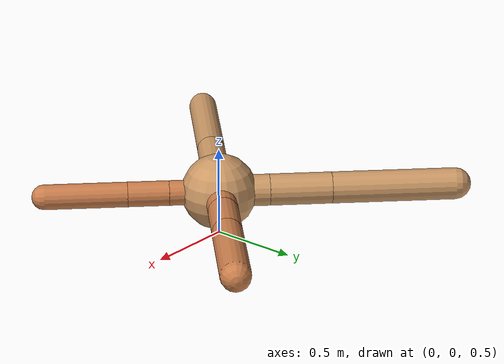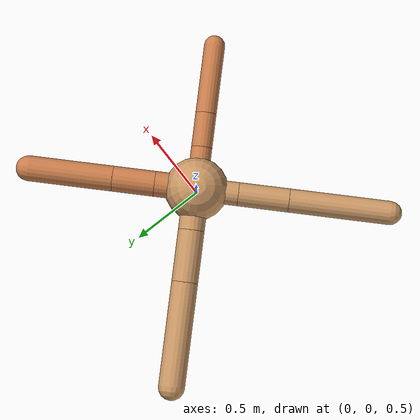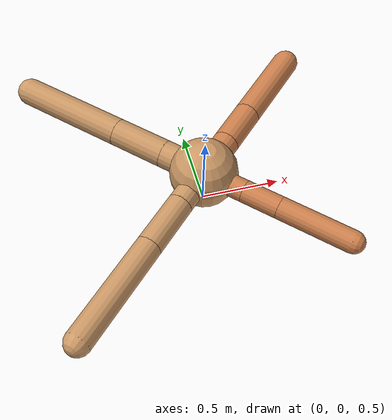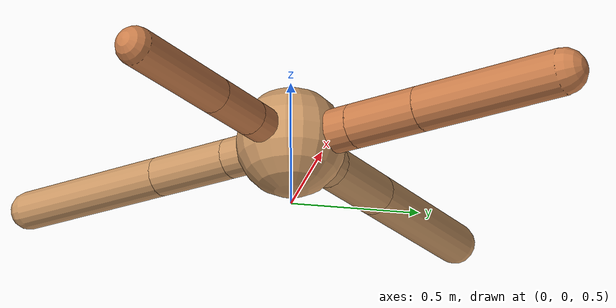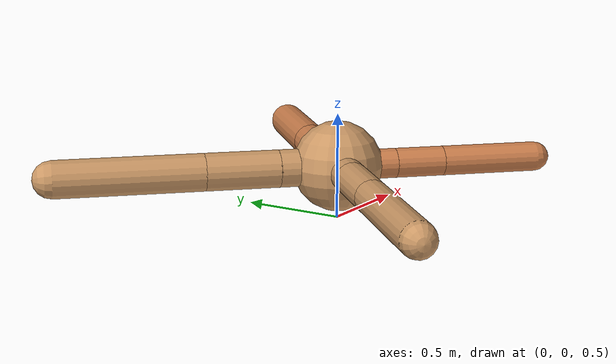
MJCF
<?xml version="1.0" ?>
<mujoco model="ant">

	<compiler angle="degree" coordinate="local" inertiafromgeom="true"/>

	<option integrator="RK4" timestep="0.01"/>

	<custom>

		<numeric data="0.0 0.0 0.55 1.0 0.0 0.0 0.0 0.0 1.0 0.0 -1.0 0.0 -1.0 0.0 1.0" name="init_qpos"/>

	</custom>

	<default>

		<joint armature="1" damping="1" limited="true"/>

		<geom conaffinity="0" condim="3" density="5.0" friction="1.5 0.1 0.1" margin="0.01" rgba="0.8 0.6 0.4 1"/>

	</default>

	<worldbody>

		<body name="torso" pos="0 0 0.75">

			<geom name="torso_geom" pos="0 0 0" size="0.21419998142780847" type="sphere"/>

			<!--joint armature="0" damping="0" limited="false" margin="0.01" name="root" pos="0 0 0" type="free"/-->

			<body name="front_left_leg" pos="0 0 0">

				<geom fromto="0 0 0 0.2 0.2 0" name="aux_1_geom" size="0.08562139619040447" type="capsule" rgba=".8 .5 .3 1"/>

				<body name="aux_1" pos="0.2 0.2 0">

					<joint axis="0 0 1" name="hip_1" pos="0.0 0.0 0.0" range="-40 40" type="hinge"/>

					<geom fromto="0 0 0 0.20149887670344824 0.20149887670344824 0" name="left_leg_geom" size="0.08562139619040447" type="capsule" rgba=".8 .5 .3 1"/>

					<body pos="0.20149887670344824 0.20149887670344824 0" name="front_left_foot">

						<joint axis="-1 1 0" name="ankle_1" pos="0.0 0.0 0.0" range="30 100" type="hinge"/>

						<geom fromto="0 0 0 0.4029977534068965 0.4029977534068965 0" name="left_ankle_geom" size="0.08562139619040447" type="capsule" rgba=".8 .5 .3 1"/>

					</body>

				</body>

			</body>

			<body name="front_right_leg" pos="0 0 0">

				<geom fromto="0 0 0 -0.2 0.2 0" name="aux_2_geom" size="0.08908134070087106" type="capsule"/>

				<body name="aux_2" pos="-0.2 0.2 0">

					<joint axis="0 0 1" name="hip_2" pos="0.0 0.0 0.0" range="-40 40" type="hinge"/>

					<geom fromto="0 0 0 -0.24848225019835213 0.24848225019835213 0" name="right_leg_geom" size="0.08908134070087106" type="capsule"/>

					<body pos="-0.24848225019835213 0.24848225019835213 0" name="front_right_foot">

						<joint axis="1 1 0" name="ankle_2" pos="0.0 0.0 0.0" range="-100 -30" type="hinge"/>

						<geom fromto="0 0 0 -0.49696450039670426 0.49696450039670426 0" name="right_ankle_geom" size="0.08908134070087106" type="capsule"/>

					</body>

				</body>

			</body>

			<body name="left_back_leg" pos="0 0 0">

				<geom fromto="0 0 0 -0.2 -0.2 0" name="aux_3_geom" size="0.07970267423454916" type="capsule"/>

				<body name="aux_3" pos="-0.2 -0.2 0">

					<joint axis="0 0 1" name="hip_3" pos="0.0 0.0 0.0" range="-40 40" type="hinge"/>

					<geom fromto="0 0 0 -0.24190738364551573 -0.24190738364551573 0" name="back_leg_geom" size="0.07970267423454916" type="capsule"/>

					<body pos="-0.24190738364551573 -0.24190738364551573 0" name="left_back_foot">

						<joint axis="-1 1 0" name="ankle_3" pos="0.0 0.0 0.0" range="-100 -30" type="hinge"/>

						<geom fromto="0 0 0 -0.48381476729103146 -0.48381476729103146 0" name="third_ankle_geom" size="0.07970267423454916" type="capsule"/>

					</body>

				</body>

			</body>

			<body name="right_back_leg" pos="0 0 0">

				<geom fromto="0 0 0 0.2 -0.2 0" name="aux_4_geom" size="0.0704493981849668" type="capsule" rgba=".8 .5 .3 1"/>

				<body name="aux_4" pos="0.2 -0.2 0">

					<joint axis="0 0 1" name="hip_4" pos="0.0 0.0 0.0" range="-40 40" type="hinge"/>

					<geom fromto="0 0 0 0.1648751543790815 -0.1648751543790815 0" name="rightback_leg_geom" size="0.0704493981849668" type="capsule" rgba=".8 .5 .3 1"/>

					<body pos="0.1648751543790815 -0.1648751543790815 0" name="right_back_foot">

						<joint axis="1 1 0" name="ankle_4" pos="0.0 0.0 0.0" range="30 100" type="hinge"/>

						<geom fromto="0 0 0 0.329750308758163 -0.329750308758163 0" name="fourth_ankle_geom" size="0.0704493981849668" type="capsule" rgba=".8 .5 .3 1"/>

					</body>

				</body>

			</body>

		</body>

	</worldbody>

	<actuator>

		<motor ctrllimited="true" ctrlrange="-1.0 1.0" joint="hip_4" gear="150"/>

		<motor ctrllimited="true" ctrlrange="-1.0 1.0" joint="ankle_4" gear="150"/>

		<motor ctrllimited="true" ctrlrange="-1.0 1.0" joint="hip_1" gear="150"/>

		<motor ctrllimited="true" ctrlrange="-1.0 1.0" joint="ankle_1" gear="150"/>

		<motor ctrllimited="true" ctrlrange="-1.0 1.0" joint="hip_2" gear="150"/>

		<motor ctrllimited="true" ctrlrange="-1.0 1.0" joint="ankle_2" gear="150"/>

		<motor ctrllimited="true" ctrlrange="-1.0 1.0" joint="hip_3" gear="150"/>

		<motor ctrllimited="true" ctrlrange="-1.0 1.0" joint="ankle_3" gear="150"/>

	</actuator>

</mujoco>
